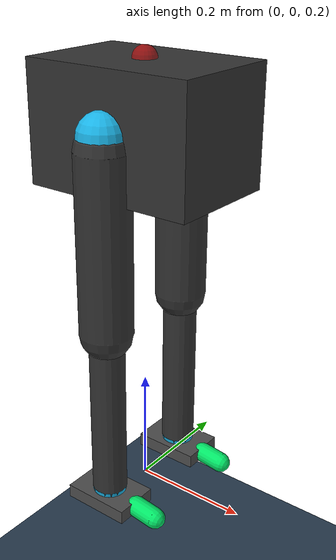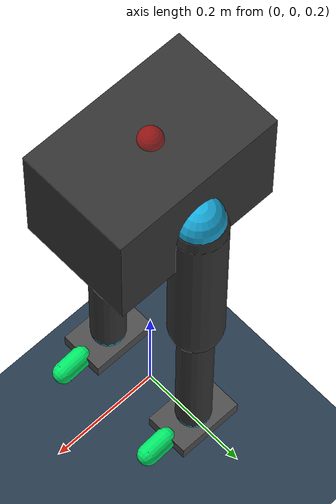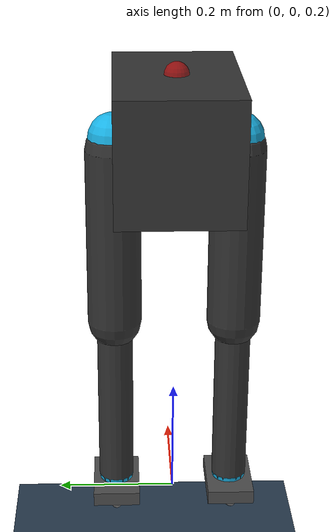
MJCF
<mujoco model="bidirectional_knee_biped">

  <compiler angle="degree" inertiafromgeom="true"/>

  <option timestep="0.002" integrator="RK4" gravity="0 0 -9.81">
    <flag warmstart="enable"/>
  </option>

  <default>
    <joint limited="true" damping="0.5" armature="0.01"/>
    <geom contype="1" conaffinity="1" condim="3" friction="1.0 0.005 0.0001"
          density="1000" margin="0.001"/>
    <motor ctrllimited="true" ctrlrange="-1 1"/>
  </default>

  <asset>
    <texture type="skybox" builtin="gradient" rgb1="0.3 0.5 0.7" rgb2="0 0 0" width="512" height="3072"/>
    <texture type="2d" name="groundplane" builtin="checker" mark="edge"
             rgb1="0.2 0.3 0.4" rgb2="0.1 0.15 0.2" markrgb="0.8 0.8 0.8"
             width="300" height="300"/>
    <material name="groundplane" texture="groundplane" texrepeat="5 5" texuniform="true" reflectance="0.2"/>
    <material name="body_mat" rgba="0.2 0.2 0.2 1"/>
    <material name="joint_mat" rgba="0.1 0.7 0.9 1"/>
    <material name="foot_mat" rgba="0.3 0.3 0.3 1"/>
    <material name="spring_mat" rgba="0.0 0.9 0.4 1"/>
    <material name="bidir_mat" rgba="0.9 0.1 0.9 1"/>
  </asset>

  <worldbody>
    <light directional="true" diffuse="0.6 0.6 0.6" specular="0.2 0.2 0.2" pos="0 0 4" dir="0 0 -1"/>
    <geom name="floor" type="plane" size="50 50 0.1" material="groundplane"/>

    <!-- ======== TORSO (payload platform) — same mass ======== -->
    <body name="torso" pos="0 0 0.85">
      <freejoint name="root"/>
      <geom name="torso_geom" type="box" size="0.15 0.1 0.1" mass="10.0" material="body_mat"/>

      <site name="imu_site" pos="0 0 0" size="0.01"/>
      <site name="payload_mount" pos="0 0 0.1" size="0.02" rgba="1 0 0 0.5"/>

      <!-- ======== RIGHT LEG (Bidirectional Knee) ======== -->
      <body name="r_hip_yaw_link" pos="0 -0.1 0">
        <joint name="r_hip_yaw" type="hinge" axis="0 0 1" range="-45 45" damping="2.0"/>
        <geom type="sphere" size="0.04" material="joint_mat"/>

        <body name="r_hip_roll_link" pos="0 0 0">
          <joint name="r_hip_roll" type="hinge" axis="1 0 0" range="-30 30" damping="2.0"/>
          <geom type="sphere" size="0.035" material="joint_mat"/>

          <body name="r_hip_pitch_link" pos="0 0 0">
            <joint name="r_hip_pitch" type="hinge" axis="0 1 0" range="-60 60" damping="2.0"/>
            <geom type="sphere" size="0.035" material="joint_mat"/>

            <!-- Upper leg — proximal mass concentration -->
            <body name="r_thigh" pos="0 0 -0.02">
              <geom name="r_thigh_geom" type="capsule" fromto="0 0 0 0 0 -0.3"
                    size="0.045" mass="3.8" material="body_mat"/>

              <body name="r_knee_link" pos="0 0 -0.3">
                <joint name="r_knee" type="hinge" axis="0 1 0"
                       range="-90 120"
                       damping="1.2"
                       stiffness="35"
                       springref="5"/>
                <geom type="sphere" size="0.04" material="bidir_mat"/>

                <!-- Lower leg — lightweight -->
                <body name="r_shin" pos="0 0 -0.02">
                  <geom name="r_shin_geom" type="capsule" fromto="0 0 0 0 0 -0.28"
                        size="0.03" mass="1.2" material="body_mat"/>

                  <!-- ANKLE -->
                  <body name="r_ankle_link" pos="0 0 -0.28">
                    <joint name="r_ankle_pitch" type="hinge" axis="0 1 0" range="-45 45"
                           damping="1.0"/>
                    <geom type="sphere" size="0.03" material="joint_mat"/>

                    <!-- Foot — hybrid design (works in both knee directions) -->
                    <body name="r_foot" pos="0 0 -0.02">
                      <geom name="r_foot_base" type="box" size="0.06 0.04 0.012"
                            pos="0 0 0" mass="0.3" material="foot_mat"/>

                      <!-- TOE with SEA spring (elastic energy storage) -->
                      <body name="r_toe" pos="0.06 0 0">
                        <joint name="r_toe_joint" type="hinge" axis="0 1 0"
                               range="-30 60"
                               stiffness="25"
                               springref="0"
                               damping="0.3"/>
                        <geom name="r_toe_geom" type="capsule" fromto="0 0 0 0.04 0 -0.005"
                              size="0.018" mass="0.15" material="spring_mat"/>
                        <site name="r_toe_tip" pos="0.04 0 -0.005" size="0.01"/>
                      </body>

                      <!-- Heel contact -->
                      <site name="r_heel" pos="-0.05 0 -0.012" size="0.01"/>
                    </body>
                  </body>
                </body>
              </body>
            </body>
          </body>
        </body>
      </body>

      <!-- ======== LEFT LEG (mirror) ======== -->
      <body name="l_hip_yaw_link" pos="0 0.1 0">
        <joint name="l_hip_yaw" type="hinge" axis="0 0 1" range="-45 45" damping="2.0"/>
        <geom type="sphere" size="0.04" material="joint_mat"/>

        <body name="l_hip_roll_link" pos="0 0 0">
          <joint name="l_hip_roll" type="hinge" axis="1 0 0" range="-30 30" damping="2.0"/>
          <geom type="sphere" size="0.035" material="joint_mat"/>

          <body name="l_hip_pitch_link" pos="0 0 0">
            <joint name="l_hip_pitch" type="hinge" axis="0 1 0" range="-60 60" damping="2.0"/>
            <geom type="sphere" size="0.035" material="joint_mat"/>

            <body name="l_thigh" pos="0 0 -0.02">
              <geom name="l_thigh_geom" type="capsule" fromto="0 0 0 0 0 -0.3"
                    size="0.045" mass="3.8" material="body_mat"/>

              <body name="l_knee_link" pos="0 0 -0.3">
                <joint name="l_knee" type="hinge" axis="0 1 0"
                       range="-90 120"
                       damping="1.2"
                       stiffness="35"
                       springref="5"/>
                <geom type="sphere" size="0.04" material="bidir_mat"/>

                <body name="l_shin" pos="0 0 -0.02">
                  <geom name="l_shin_geom" type="capsule" fromto="0 0 0 0 0 -0.28"
                        size="0.03" mass="1.2" material="body_mat"/>

                  <body name="l_ankle_link" pos="0 0 -0.28">
                    <joint name="l_ankle_pitch" type="hinge" axis="0 1 0" range="-45 45"
                           damping="1.0"/>
                    <geom type="sphere" size="0.03" material="joint_mat"/>

                    <body name="l_foot" pos="0 0 -0.02">
                      <geom name="l_foot_base" type="box" size="0.06 0.04 0.012"
                            pos="0 0 0" mass="0.3" material="foot_mat"/>

                      <body name="l_toe" pos="0.06 0 0">
                        <joint name="l_toe_joint" type="hinge" axis="0 1 0"
                               range="-30 60"
                               stiffness="25"
                               springref="0"
                               damping="0.3"/>
                        <geom name="l_toe_geom" type="capsule" fromto="0 0 0 0.04 0 -0.005"
                              size="0.018" mass="0.15" material="spring_mat"/>
                        <site name="l_toe_tip" pos="0.04 0 -0.005" size="0.01"/>
                      </body>

                      <site name="l_heel" pos="-0.05 0 -0.012" size="0.01"/>
                    </body>
                  </body>
                </body>
              </body>
            </body>
          </body>
        </body>
      </body>
    </body>
  </worldbody>

  <!-- ======== ACTUATORS (10 total: 5 per leg — NO knee motor!) ======== -->
  <actuator>
    <!-- Right leg -->
    <motor name="r_hip_yaw_act"     joint="r_hip_yaw"      gear="80"  ctrlrange="-1 1"/>
    <motor name="r_hip_roll_act"    joint="r_hip_roll"     gear="80"  ctrlrange="-1 1"/>
    <motor name="r_hip_pitch_act"   joint="r_hip_pitch"    gear="120" ctrlrange="-1 1"/>
    <motor name="r_ankle_pitch_act" joint="r_ankle_pitch"  gear="60"  ctrlrange="-1 1"/>
    <motor name="r_toe_act"         joint="r_toe_joint"    gear="30"  ctrlrange="-1 1"/>
    <!-- Left leg -->
    <motor name="l_hip_yaw_act"     joint="l_hip_yaw"      gear="80"  ctrlrange="-1 1"/>
    <motor name="l_hip_roll_act"    joint="l_hip_roll"     gear="80"  ctrlrange="-1 1"/>
    <motor name="l_hip_pitch_act"   joint="l_hip_pitch"    gear="120" ctrlrange="-1 1"/>
    <motor name="l_ankle_pitch_act" joint="l_ankle_pitch"  gear="60"  ctrlrange="-1 1"/>
    <motor name="l_toe_act"         joint="l_toe_joint"    gear="30"  ctrlrange="-1 1"/>
  </actuator>

  <sensor>
    <accelerometer name="imu_acc" site="imu_site"/>
    <gyro name="imu_gyro" site="imu_site"/>
    <framequat name="torso_quat" objtype="site" objname="imu_site"/>
    <touch name="r_heel_touch" site="r_heel"/>
    <touch name="r_toe_touch" site="r_toe_tip"/>
    <touch name="l_heel_touch" site="l_heel"/>
    <touch name="l_toe_touch" site="l_toe_tip"/>
  </sensor>
</mujoco>
